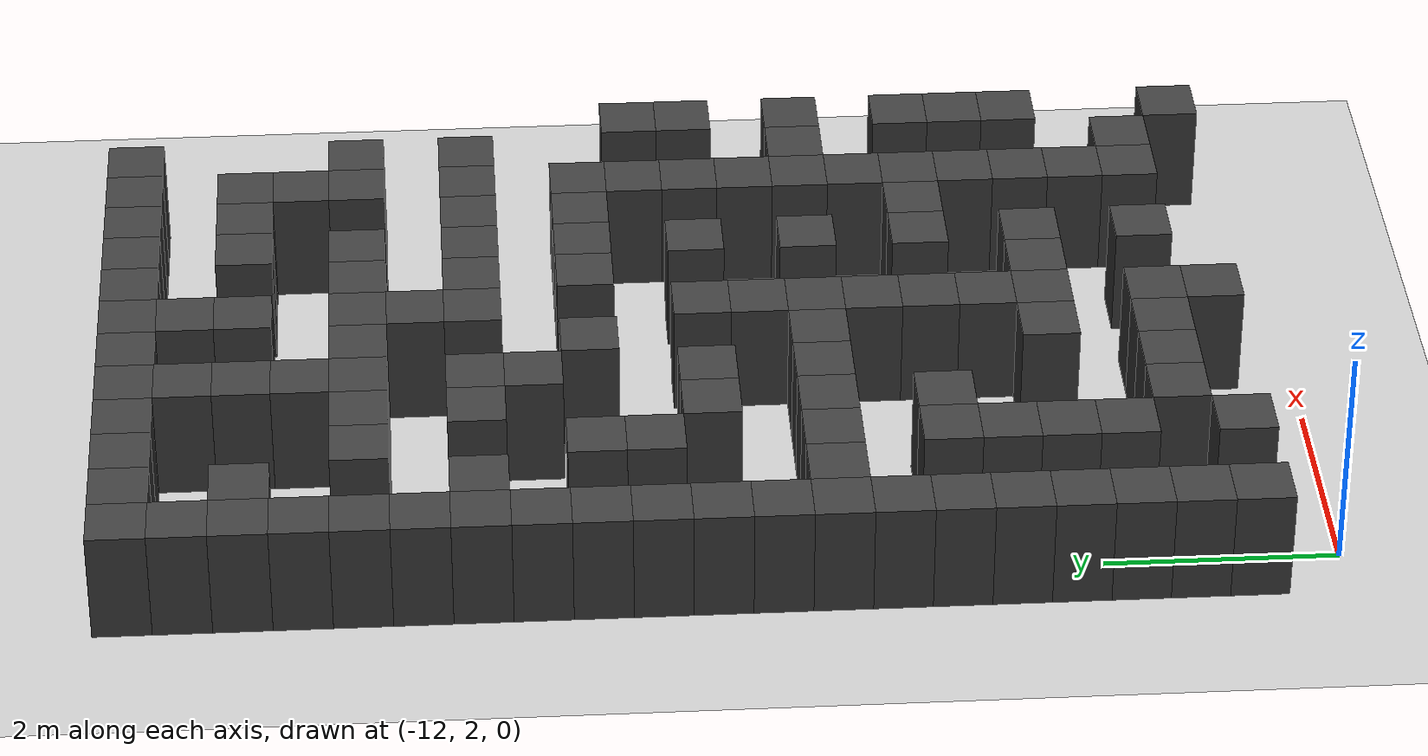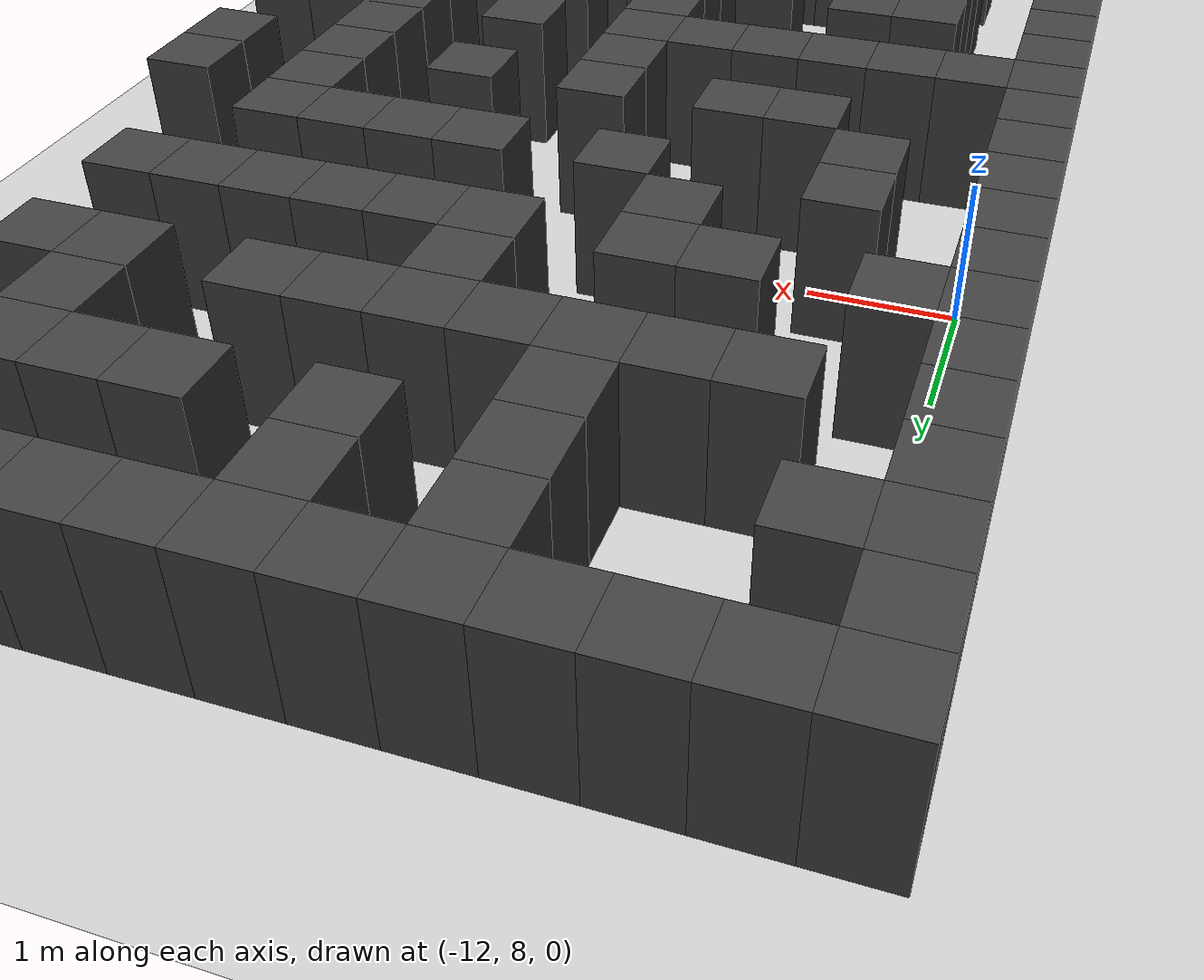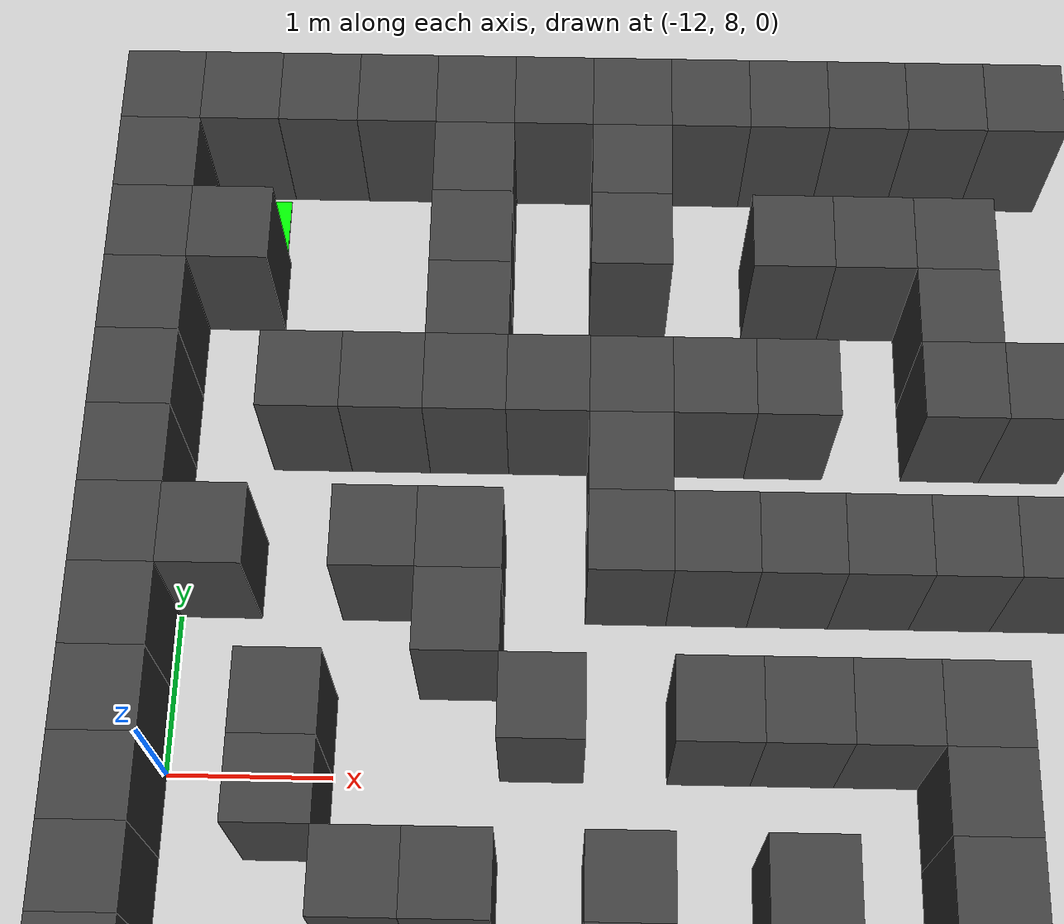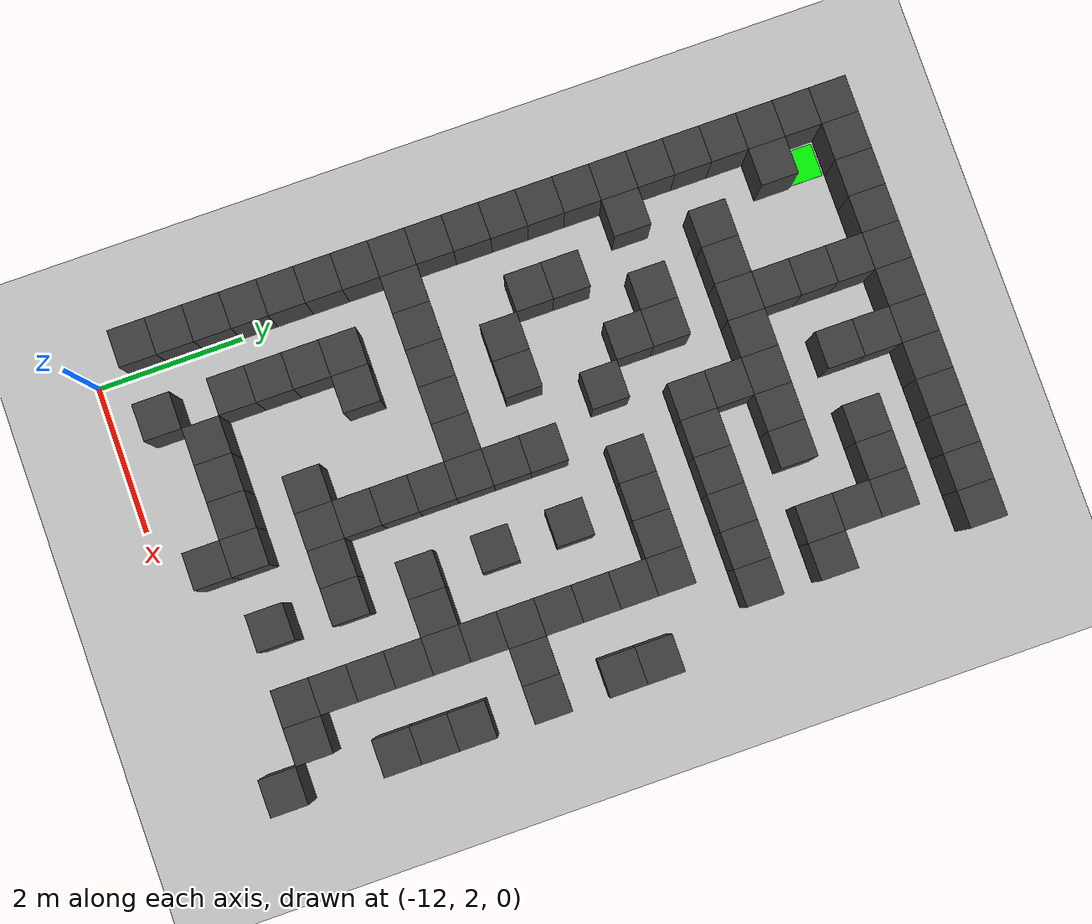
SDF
<sdf version="1.7">
 <world name="map_15497">
  <model name="ground_plane">
   <static>true</static>
   <link name="link">
    <collision name="collision">
     <geometry><plane><normal>0 0 1</normal><size>200 200</size></plane></geometry>
    </collision>
    <visual name="visual">
     <geometry><plane><normal>0 0 1</normal><size>200 200</size></plane></geometry>
     <material><ambient>0.8 0.8 0.8 1</ambient><diffuse>0.8 0.8 0.8 1</diffuse></material>
    </visual>
   </link>
  </model>
  <model name="maze_environment">
   <static>true</static>
   <link name="wall_0">
    <pose>-12.250 12.250 0.500 0 0 0</pose>
    <collision name="col"><geometry><box><size>0.5 0.5 1.0</size></box></geometry></collision>
    <visual name="vis">
     <geometry><box><size>0.5 0.5 1.0</size></box></geometry>
     <material><ambient>0.15 0.15 0.15 1</ambient><diffuse>0.25 0.25 0.25 1</diffuse></material>
    </visual>
   </link>
   <link name="wall_1">
    <pose>-11.750 12.250 0.500 0 0 0</pose>
    <collision name="col"><geometry><box><size>0.5 0.5 1.0</size></box></geometry></collision>
    <visual name="vis">
     <geometry><box><size>0.5 0.5 1.0</size></box></geometry>
     <material><ambient>0.15 0.15 0.15 1</ambient><diffuse>0.25 0.25 0.25 1</diffuse></material>
    </visual>
   </link>
   <link name="wall_2">
    <pose>-11.250 12.250 0.500 0 0 0</pose>
    <collision name="col"><geometry><box><size>0.5 0.5 1.0</size></box></geometry></collision>
    <visual name="vis">
     <geometry><box><size>0.5 0.5 1.0</size></box></geometry>
     <material><ambient>0.15 0.15 0.15 1</ambient><diffuse>0.25 0.25 0.25 1</diffuse></material>
    </visual>
   </link>
   <link name="wall_3">
    <pose>-10.750 12.250 0.500 0 0 0</pose>
    <collision name="col"><geometry><box><size>0.5 0.5 1.0</size></box></geometry></collision>
    <visual name="vis">
     <geometry><box><size>0.5 0.5 1.0</size></box></geometry>
     <material><ambient>0.15 0.15 0.15 1</ambient><diffuse>0.25 0.25 0.25 1</diffuse></material>
    </visual>
   </link>
   <link name="wall_4">
    <pose>-10.250 12.250 0.500 0 0 0</pose>
    <collision name="col"><geometry><box><size>0.5 0.5 1.0</size></box></geometry></collision>
    <visual name="vis">
     <geometry><box><size>0.5 0.5 1.0</size></box></geometry>
     <material><ambient>0.15 0.15 0.15 1</ambient><diffuse>0.25 0.25 0.25 1</diffuse></material>
    </visual>
   </link>
   <link name="wall_5">
    <pose>-9.750 12.250 0.500 0 0 0</pose>
    <collision name="col"><geometry><box><size>0.5 0.5 1.0</size></box></geometry></collision>
    <visual name="vis">
     <geometry><box><size>0.5 0.5 1.0</size></box></geometry>
     <material><ambient>0.15 0.15 0.15 1</ambient><diffuse>0.25 0.25 0.25 1</diffuse></material>
    </visual>
   </link>
   <link name="wall_6">
    <pose>-9.250 12.250 0.500 0 0 0</pose>
    <collision name="col"><geometry><box><size>0.5 0.5 1.0</size></box></geometry></collision>
    <visual name="vis">
     <geometry><box><size>0.5 0.5 1.0</size></box></geometry>
     <material><ambient>0.15 0.15 0.15 1</ambient><diffuse>0.25 0.25 0.25 1</diffuse></material>
    </visual>
   </link>
   <link name="wall_7">
    <pose>-8.750 12.250 0.500 0 0 0</pose>
    <collision name="col"><geometry><box><size>0.5 0.5 1.0</size></box></geometry></collision>
    <visual name="vis">
     <geometry><box><size>0.5 0.5 1.0</size></box></geometry>
     <material><ambient>0.15 0.15 0.15 1</ambient><diffuse>0.25 0.25 0.25 1</diffuse></material>
    </visual>
   </link>
   <link name="wall_8">
    <pose>-8.250 12.250 0.500 0 0 0</pose>
    <collision name="col"><geometry><box><size>0.5 0.5 1.0</size></box></geometry></collision>
    <visual name="vis">
     <geometry><box><size>0.5 0.5 1.0</size></box></geometry>
     <material><ambient>0.15 0.15 0.15 1</ambient><diffuse>0.25 0.25 0.25 1</diffuse></material>
    </visual>
   </link>
   <link name="wall_9">
    <pose>-7.750 12.250 0.500 0 0 0</pose>
    <collision name="col"><geometry><box><size>0.5 0.5 1.0</size></box></geometry></collision>
    <visual name="vis">
     <geometry><box><size>0.5 0.5 1.0</size></box></geometry>
     <material><ambient>0.15 0.15 0.15 1</ambient><diffuse>0.25 0.25 0.25 1</diffuse></material>
    </visual>
   </link>
   <link name="wall_10">
    <pose>-7.250 12.250 0.500 0 0 0</pose>
    <collision name="col"><geometry><box><size>0.5 0.5 1.0</size></box></geometry></collision>
    <visual name="vis">
     <geometry><box><size>0.5 0.5 1.0</size></box></geometry>
     <material><ambient>0.15 0.15 0.15 1</ambient><diffuse>0.25 0.25 0.25 1</diffuse></material>
    </visual>
   </link>
   <link name="wall_11">
    <pose>-6.750 12.250 0.500 0 0 0</pose>
    <collision name="col"><geometry><box><size>0.5 0.5 1.0</size></box></geometry></collision>
    <visual name="vis">
     <geometry><box><size>0.5 0.5 1.0</size></box></geometry>
     <material><ambient>0.15 0.15 0.15 1</ambient><diffuse>0.25 0.25 0.25 1</diffuse></material>
    </visual>
   </link>
   <link name="wall_50">
    <pose>-12.250 11.750 0.500 0 0 0</pose>
    <collision name="col"><geometry><box><size>0.5 0.5 1.0</size></box></geometry></collision>
    <visual name="vis">
     <geometry><box><size>0.5 0.5 1.0</size></box></geometry>
     <material><ambient>0.15 0.15 0.15 1</ambient><diffuse>0.25 0.25 0.25 1</diffuse></material>
    </visual>
   </link>
   <link name="wall_51">
    <pose>-10.250 11.750 0.500 0 0 0</pose>
    <collision name="col"><geometry><box><size>0.5 0.5 1.0</size></box></geometry></collision>
    <visual name="vis">
     <geometry><box><size>0.5 0.5 1.0</size></box></geometry>
     <material><ambient>0.15 0.15 0.15 1</ambient><diffuse>0.25 0.25 0.25 1</diffuse></material>
    </visual>
   </link>
   <link name="wall_52">
    <pose>-9.250 11.750 0.500 0 0 0</pose>
    <collision name="col"><geometry><box><size>0.5 0.5 1.0</size></box></geometry></collision>
    <visual name="vis">
     <geometry><box><size>0.5 0.5 1.0</size></box></geometry>
     <material><ambient>0.15 0.15 0.15 1</ambient><diffuse>0.25 0.25 0.25 1</diffuse></material>
    </visual>
   </link>
   <link name="wall_59">
    <pose>-12.250 11.250 0.500 0 0 0</pose>
    <collision name="col"><geometry><box><size>0.5 0.5 1.0</size></box></geometry></collision>
    <visual name="vis">
     <geometry><box><size>0.5 0.5 1.0</size></box></geometry>
     <material><ambient>0.15 0.15 0.15 1</ambient><diffuse>0.25 0.25 0.25 1</diffuse></material>
    </visual>
   </link>
   <link name="wall_60">
    <pose>-11.750 11.250 0.500 0 0 0</pose>
    <collision name="col"><geometry><box><size>0.5 0.5 1.0</size></box></geometry></collision>
    <visual name="vis">
     <geometry><box><size>0.5 0.5 1.0</size></box></geometry>
     <material><ambient>0.15 0.15 0.15 1</ambient><diffuse>0.25 0.25 0.25 1</diffuse></material>
    </visual>
   </link>
   <link name="wall_61">
    <pose>-10.250 11.250 0.500 0 0 0</pose>
    <collision name="col"><geometry><box><size>0.5 0.5 1.0</size></box></geometry></collision>
    <visual name="vis">
     <geometry><box><size>0.5 0.5 1.0</size></box></geometry>
     <material><ambient>0.15 0.15 0.15 1</ambient><diffuse>0.25 0.25 0.25 1</diffuse></material>
    </visual>
   </link>
   <link name="wall_62">
    <pose>-9.250 11.250 0.500 0 0 0</pose>
    <collision name="col"><geometry><box><size>0.5 0.5 1.0</size></box></geometry></collision>
    <visual name="vis">
     <geometry><box><size>0.5 0.5 1.0</size></box></geometry>
     <material><ambient>0.15 0.15 0.15 1</ambient><diffuse>0.25 0.25 0.25 1</diffuse></material>
    </visual>
   </link>
   <link name="wall_63">
    <pose>-8.250 11.250 0.500 0 0 0</pose>
    <collision name="col"><geometry><box><size>0.5 0.5 1.0</size></box></geometry></collision>
    <visual name="vis">
     <geometry><box><size>0.5 0.5 1.0</size></box></geometry>
     <material><ambient>0.15 0.15 0.15 1</ambient><diffuse>0.25 0.25 0.25 1</diffuse></material>
    </visual>
   </link>
   <link name="wall_64">
    <pose>-7.750 11.250 0.500 0 0 0</pose>
    <collision name="col"><geometry><box><size>0.5 0.5 1.0</size></box></geometry></collision>
    <visual name="vis">
     <geometry><box><size>0.5 0.5 1.0</size></box></geometry>
     <material><ambient>0.15 0.15 0.15 1</ambient><diffuse>0.25 0.25 0.25 1</diffuse></material>
    </visual>
   </link>
   <link name="wall_65">
    <pose>-7.250 11.250 0.500 0 0 0</pose>
    <collision name="col"><geometry><box><size>0.5 0.5 1.0</size></box></geometry></collision>
    <visual name="vis">
     <geometry><box><size>0.5 0.5 1.0</size></box></geometry>
     <material><ambient>0.15 0.15 0.15 1</ambient><diffuse>0.25 0.25 0.25 1</diffuse></material>
    </visual>
   </link>
   <link name="wall_91">
    <pose>-12.250 10.750 0.500 0 0 0</pose>
    <collision name="col"><geometry><box><size>0.5 0.5 1.0</size></box></geometry></collision>
    <visual name="vis">
     <geometry><box><size>0.5 0.5 1.0</size></box></geometry>
     <material><ambient>0.15 0.15 0.15 1</ambient><diffuse>0.25 0.25 0.25 1</diffuse></material>
    </visual>
   </link>
   <link name="wall_92">
    <pose>-10.250 10.750 0.500 0 0 0</pose>
    <collision name="col"><geometry><box><size>0.5 0.5 1.0</size></box></geometry></collision>
    <visual name="vis">
     <geometry><box><size>0.5 0.5 1.0</size></box></geometry>
     <material><ambient>0.15 0.15 0.15 1</ambient><diffuse>0.25 0.25 0.25 1</diffuse></material>
    </visual>
   </link>
   <link name="wall_93">
    <pose>-7.250 10.750 0.500 0 0 0</pose>
    <collision name="col"><geometry><box><size>0.5 0.5 1.0</size></box></geometry></collision>
    <visual name="vis">
     <geometry><box><size>0.5 0.5 1.0</size></box></geometry>
     <material><ambient>0.15 0.15 0.15 1</ambient><diffuse>0.25 0.25 0.25 1</diffuse></material>
    </visual>
   </link>
   <link name="wall_105">
    <pose>-12.250 10.250 0.500 0 0 0</pose>
    <collision name="col"><geometry><box><size>0.5 0.5 1.0</size></box></geometry></collision>
    <visual name="vis">
     <geometry><box><size>0.5 0.5 1.0</size></box></geometry>
     <material><ambient>0.15 0.15 0.15 1</ambient><diffuse>0.25 0.25 0.25 1</diffuse></material>
    </visual>
   </link>
   <link name="wall_106">
    <pose>-11.250 10.250 0.500 0 0 0</pose>
    <collision name="col"><geometry><box><size>0.5 0.5 1.0</size></box></geometry></collision>
    <visual name="vis">
     <geometry><box><size>0.5 0.5 1.0</size></box></geometry>
     <material><ambient>0.15 0.15 0.15 1</ambient><diffuse>0.25 0.25 0.25 1</diffuse></material>
    </visual>
   </link>
   <link name="wall_107">
    <pose>-10.750 10.250 0.500 0 0 0</pose>
    <collision name="col"><geometry><box><size>0.5 0.5 1.0</size></box></geometry></collision>
    <visual name="vis">
     <geometry><box><size>0.5 0.5 1.0</size></box></geometry>
     <material><ambient>0.15 0.15 0.15 1</ambient><diffuse>0.25 0.25 0.25 1</diffuse></material>
    </visual>
   </link>
   <link name="wall_108">
    <pose>-10.250 10.250 0.500 0 0 0</pose>
    <collision name="col"><geometry><box><size>0.5 0.5 1.0</size></box></geometry></collision>
    <visual name="vis">
     <geometry><box><size>0.5 0.5 1.0</size></box></geometry>
     <material><ambient>0.15 0.15 0.15 1</ambient><diffuse>0.25 0.25 0.25 1</diffuse></material>
    </visual>
   </link>
   <link name="wall_109">
    <pose>-9.750 10.250 0.500 0 0 0</pose>
    <collision name="col"><geometry><box><size>0.5 0.5 1.0</size></box></geometry></collision>
    <visual name="vis">
     <geometry><box><size>0.5 0.5 1.0</size></box></geometry>
     <material><ambient>0.15 0.15 0.15 1</ambient><diffuse>0.25 0.25 0.25 1</diffuse></material>
    </visual>
   </link>
   <link name="wall_110">
    <pose>-9.250 10.250 0.500 0 0 0</pose>
    <collision name="col"><geometry><box><size>0.5 0.5 1.0</size></box></geometry></collision>
    <visual name="vis">
     <geometry><box><size>0.5 0.5 1.0</size></box></geometry>
     <material><ambient>0.15 0.15 0.15 1</ambient><diffuse>0.25 0.25 0.25 1</diffuse></material>
    </visual>
   </link>
   <link name="wall_111">
    <pose>-8.750 10.250 0.500 0 0 0</pose>
    <collision name="col"><geometry><box><size>0.5 0.5 1.0</size></box></geometry></collision>
    <visual name="vis">
     <geometry><box><size>0.5 0.5 1.0</size></box></geometry>
     <material><ambient>0.15 0.15 0.15 1</ambient><diffuse>0.25 0.25 0.25 1</diffuse></material>
    </visual>
   </link>
   <link name="wall_112">
    <pose>-8.250 10.250 0.500 0 0 0</pose>
    <collision name="col"><geometry><box><size>0.5 0.5 1.0</size></box></geometry></collision>
    <visual name="vis">
     <geometry><box><size>0.5 0.5 1.0</size></box></geometry>
     <material><ambient>0.15 0.15 0.15 1</ambient><diffuse>0.25 0.25 0.25 1</diffuse></material>
    </visual>
   </link>
   <link name="wall_113">
    <pose>-7.250 10.250 0.500 0 0 0</pose>
    <collision name="col"><geometry><box><size>0.5 0.5 1.0</size></box></geometry></collision>
    <visual name="vis">
     <geometry><box><size>0.5 0.5 1.0</size></box></geometry>
     <material><ambient>0.15 0.15 0.15 1</ambient><diffuse>0.25 0.25 0.25 1</diffuse></material>
    </visual>
   </link>
   <link name="wall_114">
    <pose>-6.750 10.250 0.500 0 0 0</pose>
    <collision name="col"><geometry><box><size>0.5 0.5 1.0</size></box></geometry></collision>
    <visual name="vis">
     <geometry><box><size>0.5 0.5 1.0</size></box></geometry>
     <material><ambient>0.15 0.15 0.15 1</ambient><diffuse>0.25 0.25 0.25 1</diffuse></material>
    </visual>
   </link>
   <link name="wall_138">
    <pose>-12.250 9.750 0.500 0 0 0</pose>
    <collision name="col"><geometry><box><size>0.5 0.5 1.0</size></box></geometry></collision>
    <visual name="vis">
     <geometry><box><size>0.5 0.5 1.0</size></box></geometry>
     <material><ambient>0.15 0.15 0.15 1</ambient><diffuse>0.25 0.25 0.25 1</diffuse></material>
    </visual>
   </link>
   <link name="wall_139">
    <pose>-9.250 9.750 0.500 0 0 0</pose>
    <collision name="col"><geometry><box><size>0.5 0.5 1.0</size></box></geometry></collision>
    <visual name="vis">
     <geometry><box><size>0.5 0.5 1.0</size></box></geometry>
     <material><ambient>0.15 0.15 0.15 1</ambient><diffuse>0.25 0.25 0.25 1</diffuse></material>
    </visual>
   </link>
   <link name="wall_150">
    <pose>-12.250 9.250 0.500 0 0 0</pose>
    <collision name="col"><geometry><box><size>0.5 0.5 1.0</size></box></geometry></collision>
    <visual name="vis">
     <geometry><box><size>0.5 0.5 1.0</size></box></geometry>
     <material><ambient>0.15 0.15 0.15 1</ambient><diffuse>0.25 0.25 0.25 1</diffuse></material>
    </visual>
   </link>
   <link name="wall_151">
    <pose>-11.750 9.250 0.500 0 0 0</pose>
    <collision name="col"><geometry><box><size>0.5 0.5 1.0</size></box></geometry></collision>
    <visual name="vis">
     <geometry><box><size>0.5 0.5 1.0</size></box></geometry>
     <material><ambient>0.15 0.15 0.15 1</ambient><diffuse>0.25 0.25 0.25 1</diffuse></material>
    </visual>
   </link>
   <link name="wall_152">
    <pose>-10.750 9.250 0.500 0 0 0</pose>
    <collision name="col"><geometry><box><size>0.5 0.5 1.0</size></box></geometry></collision>
    <visual name="vis">
     <geometry><box><size>0.5 0.5 1.0</size></box></geometry>
     <material><ambient>0.15 0.15 0.15 1</ambient><diffuse>0.25 0.25 0.25 1</diffuse></material>
    </visual>
   </link>
   <link name="wall_153">
    <pose>-10.250 9.250 0.500 0 0 0</pose>
    <collision name="col"><geometry><box><size>0.5 0.5 1.0</size></box></geometry></collision>
    <visual name="vis">
     <geometry><box><size>0.5 0.5 1.0</size></box></geometry>
     <material><ambient>0.15 0.15 0.15 1</ambient><diffuse>0.25 0.25 0.25 1</diffuse></material>
    </visual>
   </link>
   <link name="wall_154">
    <pose>-9.250 9.250 0.500 0 0 0</pose>
    <collision name="col"><geometry><box><size>0.5 0.5 1.0</size></box></geometry></collision>
    <visual name="vis">
     <geometry><box><size>0.5 0.5 1.0</size></box></geometry>
     <material><ambient>0.15 0.15 0.15 1</ambient><diffuse>0.25 0.25 0.25 1</diffuse></material>
    </visual>
   </link>
   <link name="wall_155">
    <pose>-8.750 9.250 0.500 0 0 0</pose>
    <collision name="col"><geometry><box><size>0.5 0.5 1.0</size></box></geometry></collision>
    <visual name="vis">
     <geometry><box><size>0.5 0.5 1.0</size></box></geometry>
     <material><ambient>0.15 0.15 0.15 1</ambient><diffuse>0.25 0.25 0.25 1</diffuse></material>
    </visual>
   </link>
   <link name="wall_156">
    <pose>-8.250 9.250 0.500 0 0 0</pose>
    <collision name="col"><geometry><box><size>0.5 0.5 1.0</size></box></geometry></collision>
    <visual name="vis">
     <geometry><box><size>0.5 0.5 1.0</size></box></geometry>
     <material><ambient>0.15 0.15 0.15 1</ambient><diffuse>0.25 0.25 0.25 1</diffuse></material>
    </visual>
   </link>
   <link name="wall_157">
    <pose>-7.750 9.250 0.500 0 0 0</pose>
    <collision name="col"><geometry><box><size>0.5 0.5 1.0</size></box></geometry></collision>
    <visual name="vis">
     <geometry><box><size>0.5 0.5 1.0</size></box></geometry>
     <material><ambient>0.15 0.15 0.15 1</ambient><diffuse>0.25 0.25 0.25 1</diffuse></material>
    </visual>
   </link>
   <link name="wall_158">
    <pose>-7.250 9.250 0.500 0 0 0</pose>
    <collision name="col"><geometry><box><size>0.5 0.5 1.0</size></box></geometry></collision>
    <visual name="vis">
     <geometry><box><size>0.5 0.5 1.0</size></box></geometry>
     <material><ambient>0.15 0.15 0.15 1</ambient><diffuse>0.25 0.25 0.25 1</diffuse></material>
    </visual>
   </link>
   <link name="wall_159">
    <pose>-6.750 9.250 0.500 0 0 0</pose>
    <collision name="col"><geometry><box><size>0.5 0.5 1.0</size></box></geometry></collision>
    <visual name="vis">
     <geometry><box><size>0.5 0.5 1.0</size></box></geometry>
     <material><ambient>0.15 0.15 0.15 1</ambient><diffuse>0.25 0.25 0.25 1</diffuse></material>
    </visual>
   </link>
   <link name="wall_183">
    <pose>-12.250 8.750 0.500 0 0 0</pose>
    <collision name="col"><geometry><box><size>0.5 0.5 1.0</size></box></geometry></collision>
    <visual name="vis">
     <geometry><box><size>0.5 0.5 1.0</size></box></geometry>
     <material><ambient>0.15 0.15 0.15 1</ambient><diffuse>0.25 0.25 0.25 1</diffuse></material>
    </visual>
   </link>
   <link name="wall_184">
    <pose>-10.250 8.750 0.500 0 0 0</pose>
    <collision name="col"><geometry><box><size>0.5 0.5 1.0</size></box></geometry></collision>
    <visual name="vis">
     <geometry><box><size>0.5 0.5 1.0</size></box></geometry>
     <material><ambient>0.15 0.15 0.15 1</ambient><diffuse>0.25 0.25 0.25 1</diffuse></material>
    </visual>
   </link>
   <link name="wall_195">
    <pose>-12.250 8.250 0.500 0 0 0</pose>
    <collision name="col"><geometry><box><size>0.5 0.5 1.0</size></box></geometry></collision>
    <visual name="vis">
     <geometry><box><size>0.5 0.5 1.0</size></box></geometry>
     <material><ambient>0.15 0.15 0.15 1</ambient><diffuse>0.25 0.25 0.25 1</diffuse></material>
    </visual>
   </link>
   <link name="wall_196">
    <pose>-11.250 8.250 0.500 0 0 0</pose>
    <collision name="col"><geometry><box><size>0.5 0.5 1.0</size></box></geometry></collision>
    <visual name="vis">
     <geometry><box><size>0.5 0.5 1.0</size></box></geometry>
     <material><ambient>0.15 0.15 0.15 1</ambient><diffuse>0.25 0.25 0.25 1</diffuse></material>
    </visual>
   </link>
   <link name="wall_197">
    <pose>-9.750 8.250 0.500 0 0 0</pose>
    <collision name="col"><geometry><box><size>0.5 0.5 1.0</size></box></geometry></collision>
    <visual name="vis">
     <geometry><box><size>0.5 0.5 1.0</size></box></geometry>
     <material><ambient>0.15 0.15 0.15 1</ambient><diffuse>0.25 0.25 0.25 1</diffuse></material>
    </visual>
   </link>
   <link name="wall_198">
    <pose>-8.750 8.250 0.500 0 0 0</pose>
    <collision name="col"><geometry><box><size>0.5 0.5 1.0</size></box></geometry></collision>
    <visual name="vis">
     <geometry><box><size>0.5 0.5 1.0</size></box></geometry>
     <material><ambient>0.15 0.15 0.15 1</ambient><diffuse>0.25 0.25 0.25 1</diffuse></material>
    </visual>
   </link>
   <link name="wall_199">
    <pose>-8.250 8.250 0.500 0 0 0</pose>
    <collision name="col"><geometry><box><size>0.5 0.5 1.0</size></box></geometry></collision>
    <visual name="vis">
     <geometry><box><size>0.5 0.5 1.0</size></box></geometry>
     <material><ambient>0.15 0.15 0.15 1</ambient><diffuse>0.25 0.25 0.25 1</diffuse></material>
    </visual>
   </link>
   <link name="wall_200">
    <pose>-7.750 8.250 0.500 0 0 0</pose>
    <collision name="col"><geometry><box><size>0.5 0.5 1.0</size></box></geometry></collision>
    <visual name="vis">
     <geometry><box><size>0.5 0.5 1.0</size></box></geometry>
     <material><ambient>0.15 0.15 0.15 1</ambient><diffuse>0.25 0.25 0.25 1</diffuse></material>
    </visual>
   </link>
   <link name="wall_201">
    <pose>-7.250 8.250 0.500 0 0 0</pose>
    <collision name="col"><geometry><box><size>0.5 0.5 1.0</size></box></geometry></collision>
    <visual name="vis">
     <geometry><box><size>0.5 0.5 1.0</size></box></geometry>
     <material><ambient>0.15 0.15 0.15 1</ambient><diffuse>0.25 0.25 0.25 1</diffuse></material>
    </visual>
   </link>
   <link name="wall_228">
    <pose>-12.250 7.750 0.500 0 0 0</pose>
    <collision name="col"><geometry><box><size>0.5 0.5 1.0</size></box></geometry></collision>
    <visual name="vis">
     <geometry><box><size>0.5 0.5 1.0</size></box></geometry>
     <material><ambient>0.15 0.15 0.15 1</ambient><diffuse>0.25 0.25 0.25 1</diffuse></material>
    </visual>
   </link>
   <link name="wall_229">
    <pose>-11.250 7.750 0.500 0 0 0</pose>
    <collision name="col"><geometry><box><size>0.5 0.5 1.0</size></box></geometry></collision>
    <visual name="vis">
     <geometry><box><size>0.5 0.5 1.0</size></box></geometry>
     <material><ambient>0.15 0.15 0.15 1</ambient><diffuse>0.25 0.25 0.25 1</diffuse></material>
    </visual>
   </link>
   <link name="wall_230">
    <pose>-7.250 7.750 0.500 0 0 0</pose>
    <collision name="col"><geometry><box><size>0.5 0.5 1.0</size></box></geometry></collision>
    <visual name="vis">
     <geometry><box><size>0.5 0.5 1.0</size></box></geometry>
     <material><ambient>0.15 0.15 0.15 1</ambient><diffuse>0.25 0.25 0.25 1</diffuse></material>
    </visual>
   </link>
   <link name="wall_231">
    <pose>-6.250 7.750 0.500 0 0 0</pose>
    <collision name="col"><geometry><box><size>0.5 0.5 1.0</size></box></geometry></collision>
    <visual name="vis">
     <geometry><box><size>0.5 0.5 1.0</size></box></geometry>
     <material><ambient>0.15 0.15 0.15 1</ambient><diffuse>0.25 0.25 0.25 1</diffuse></material>
    </visual>
   </link>
   <link name="wall_239">
    <pose>-12.250 7.250 0.500 0 0 0</pose>
    <collision name="col"><geometry><box><size>0.5 0.5 1.0</size></box></geometry></collision>
    <visual name="vis">
     <geometry><box><size>0.5 0.5 1.0</size></box></geometry>
     <material><ambient>0.15 0.15 0.15 1</ambient><diffuse>0.25 0.25 0.25 1</diffuse></material>
    </visual>
   </link>
   <link name="wall_240">
    <pose>-10.750 7.250 0.500 0 0 0</pose>
    <collision name="col"><geometry><box><size>0.5 0.5 1.0</size></box></geometry></collision>
    <visual name="vis">
     <geometry><box><size>0.5 0.5 1.0</size></box></geometry>
     <material><ambient>0.15 0.15 0.15 1</ambient><diffuse>0.25 0.25 0.25 1</diffuse></material>
    </visual>
   </link>
   <link name="wall_241">
    <pose>-10.250 7.250 0.500 0 0 0</pose>
    <collision name="col"><geometry><box><size>0.5 0.5 1.0</size></box></geometry></collision>
    <visual name="vis">
     <geometry><box><size>0.5 0.5 1.0</size></box></geometry>
     <material><ambient>0.15 0.15 0.15 1</ambient><diffuse>0.25 0.25 0.25 1</diffuse></material>
    </visual>
   </link>
   <link name="wall_242">
    <pose>-9.250 7.250 0.500 0 0 0</pose>
    <collision name="col"><geometry><box><size>0.5 0.5 1.0</size></box></geometry></collision>
    <visual name="vis">
     <geometry><box><size>0.5 0.5 1.0</size></box></geometry>
     <material><ambient>0.15 0.15 0.15 1</ambient><diffuse>0.25 0.25 0.25 1</diffuse></material>
    </visual>
   </link>
   <link name="wall_243">
    <pose>-8.250 7.250 0.500 0 0 0</pose>
    <collision name="col"><geometry><box><size>0.5 0.5 1.0</size></box></geometry></collision>
    <visual name="vis">
     <geometry><box><size>0.5 0.5 1.0</size></box></geometry>
     <material><ambient>0.15 0.15 0.15 1</ambient><diffuse>0.25 0.25 0.25 1</diffuse></material>
    </visual>
   </link>
   <link name="wall_244">
    <pose>-7.250 7.250 0.500 0 0 0</pose>
    <collision name="col"><geometry><box><size>0.5 0.5 1.0</size></box></geometry></collision>
    <visual name="vis">
     <geometry><box><size>0.5 0.5 1.0</size></box></geometry>
     <material><ambient>0.15 0.15 0.15 1</ambient><diffuse>0.25 0.25 0.25 1</diffuse></material>
    </visual>
   </link>
   <link name="wall_245">
    <pose>-6.250 7.250 0.500 0 0 0</pose>
    <collision name="col"><geometry><box><size>0.5 0.5 1.0</size></box></geometry></collision>
    <visual name="vis">
     <geometry><box><size>0.5 0.5 1.0</size></box></geometry>
     <material><ambient>0.15 0.15 0.15 1</ambient><diffuse>0.25 0.25 0.25 1</diffuse></material>
    </visual>
   </link>
   <link name="wall_273">
    <pose>-12.250 6.750 0.500 0 0 0</pose>
    <collision name="col"><geometry><box><size>0.5 0.5 1.0</size></box></geometry></collision>
    <visual name="vis">
     <geometry><box><size>0.5 0.5 1.0</size></box></geometry>
     <material><ambient>0.15 0.15 0.15 1</ambient><diffuse>0.25 0.25 0.25 1</diffuse></material>
    </visual>
   </link>
   <link name="wall_274">
    <pose>-9.250 6.750 0.500 0 0 0</pose>
    <collision name="col"><geometry><box><size>0.5 0.5 1.0</size></box></geometry></collision>
    <visual name="vis">
     <geometry><box><size>0.5 0.5 1.0</size></box></geometry>
     <material><ambient>0.15 0.15 0.15 1</ambient><diffuse>0.25 0.25 0.25 1</diffuse></material>
    </visual>
   </link>
   <link name="wall_275">
    <pose>-7.250 6.750 0.500 0 0 0</pose>
    <collision name="col"><geometry><box><size>0.5 0.5 1.0</size></box></geometry></collision>
    <visual name="vis">
     <geometry><box><size>0.5 0.5 1.0</size></box></geometry>
     <material><ambient>0.15 0.15 0.15 1</ambient><diffuse>0.25 0.25 0.25 1</diffuse></material>
    </visual>
   </link>
   <link name="wall_283">
    <pose>-12.250 6.250 0.500 0 0 0</pose>
    <collision name="col"><geometry><box><size>0.5 0.5 1.0</size></box></geometry></collision>
    <visual name="vis">
     <geometry><box><size>0.5 0.5 1.0</size></box></geometry>
     <material><ambient>0.15 0.15 0.15 1</ambient><diffuse>0.25 0.25 0.25 1</diffuse></material>
    </visual>
   </link>
   <link name="wall_284">
    <pose>-11.750 6.250 0.500 0 0 0</pose>
    <collision name="col"><geometry><box><size>0.5 0.5 1.0</size></box></geometry></collision>
    <visual name="vis">
     <geometry><box><size>0.5 0.5 1.0</size></box></geometry>
     <material><ambient>0.15 0.15 0.15 1</ambient><diffuse>0.25 0.25 0.25 1</diffuse></material>
    </visual>
   </link>
   <link name="wall_285">
    <pose>-11.250 6.250 0.500 0 0 0</pose>
    <collision name="col"><geometry><box><size>0.5 0.5 1.0</size></box></geometry></collision>
    <visual name="vis">
     <geometry><box><size>0.5 0.5 1.0</size></box></geometry>
     <material><ambient>0.15 0.15 0.15 1</ambient><diffuse>0.25 0.25 0.25 1</diffuse></material>
    </visual>
   </link>
   <link name="wall_286">
    <pose>-10.750 6.250 0.500 0 0 0</pose>
    <collision name="col"><geometry><box><size>0.5 0.5 1.0</size></box></geometry></collision>
    <visual name="vis">
     <geometry><box><size>0.5 0.5 1.0</size></box></geometry>
     <material><ambient>0.15 0.15 0.15 1</ambient><diffuse>0.25 0.25 0.25 1</diffuse></material>
    </visual>
   </link>
   <link name="wall_287">
    <pose>-10.250 6.250 0.500 0 0 0</pose>
    <collision name="col"><geometry><box><size>0.5 0.5 1.0</size></box></geometry></collision>
    <visual name="vis">
     <geometry><box><size>0.5 0.5 1.0</size></box></geometry>
     <material><ambient>0.15 0.15 0.15 1</ambient><diffuse>0.25 0.25 0.25 1</diffuse></material>
    </visual>
   </link>
   <link name="wall_288">
    <pose>-9.750 6.250 0.500 0 0 0</pose>
    <collision name="col"><geometry><box><size>0.5 0.5 1.0</size></box></geometry></collision>
    <visual name="vis">
     <geometry><box><size>0.5 0.5 1.0</size></box></geometry>
     <material><ambient>0.15 0.15 0.15 1</ambient><diffuse>0.25 0.25 0.25 1</diffuse></material>
    </visual>
   </link>
   <link name="wall_289">
    <pose>-9.250 6.250 0.500 0 0 0</pose>
    <collision name="col"><geometry><box><size>0.5 0.5 1.0</size></box></geometry></collision>
    <visual name="vis">
     <geometry><box><size>0.5 0.5 1.0</size></box></geometry>
     <material><ambient>0.15 0.15 0.15 1</ambient><diffuse>0.25 0.25 0.25 1</diffuse></material>
    </visual>
   </link>
   <link name="wall_290">
    <pose>-8.250 6.250 0.500 0 0 0</pose>
    <collision name="col"><geometry><box><size>0.5 0.5 1.0</size></box></geometry></collision>
    <visual name="vis">
     <geometry><box><size>0.5 0.5 1.0</size></box></geometry>
     <material><ambient>0.15 0.15 0.15 1</ambient><diffuse>0.25 0.25 0.25 1</diffuse></material>
    </visual>
   </link>
   <link name="wall_291">
    <pose>-7.250 6.250 0.500 0 0 0</pose>
    <collision name="col"><geometry><box><size>0.5 0.5 1.0</size></box></geometry></collision>
    <visual name="vis">
     <geometry><box><size>0.5 0.5 1.0</size></box></geometry>
     <material><ambient>0.15 0.15 0.15 1</ambient><diffuse>0.25 0.25 0.25 1</diffuse></material>
    </visual>
   </link>
   <link name="wall_292">
    <pose>-6.750 6.250 0.500 0 0 0</pose>
    <collision name="col"><geometry><box><size>0.5 0.5 1.0</size></box></geometry></collision>
    <visual name="vis">
     <geometry><box><size>0.5 0.5 1.0</size></box></geometry>
     <material><ambient>0.15 0.15 0.15 1</ambient><diffuse>0.25 0.25 0.25 1</diffuse></material>
    </visual>
   </link>
   <link name="wall_293">
    <pose>-6.250 6.250 0.500 0 0 0</pose>
    <collision name="col"><geometry><box><size>0.5 0.5 1.0</size></box></geometry></collision>
    <visual name="vis">
     <geometry><box><size>0.5 0.5 1.0</size></box></geometry>
     <material><ambient>0.15 0.15 0.15 1</ambient><diffuse>0.25 0.25 0.25 1</diffuse></material>
    </visual>
   </link>
   <link name="wall_321">
    <pose>-12.250 5.750 0.500 0 0 0</pose>
    <collision name="col"><geometry><box><size>0.5 0.5 1.0</size></box></geometry></collision>
    <visual name="vis">
     <geometry><box><size>0.5 0.5 1.0</size></box></geometry>
     <material><ambient>0.15 0.15 0.15 1</ambient><diffuse>0.25 0.25 0.25 1</diffuse></material>
    </visual>
   </link>
   <link name="wall_322">
    <pose>-9.250 5.750 0.500 0 0 0</pose>
    <collision name="col"><geometry><box><size>0.5 0.5 1.0</size></box></geometry></collision>
    <visual name="vis">
     <geometry><box><size>0.5 0.5 1.0</size></box></geometry>
     <material><ambient>0.15 0.15 0.15 1</ambient><diffuse>0.25 0.25 0.25 1</diffuse></material>
    </visual>
   </link>
   <link name="wall_323">
    <pose>-7.250 5.750 0.500 0 0 0</pose>
    <collision name="col"><geometry><box><size>0.5 0.5 1.0</size></box></geometry></collision>
    <visual name="vis">
     <geometry><box><size>0.5 0.5 1.0</size></box></geometry>
     <material><ambient>0.15 0.15 0.15 1</ambient><diffuse>0.25 0.25 0.25 1</diffuse></material>
    </visual>
   </link>
   <link name="wall_333">
    <pose>-12.250 5.250 0.500 0 0 0</pose>
    <collision name="col"><geometry><box><size>0.5 0.5 1.0</size></box></geometry></collision>
    <visual name="vis">
     <geometry><box><size>0.5 0.5 1.0</size></box></geometry>
     <material><ambient>0.15 0.15 0.15 1</ambient><diffuse>0.25 0.25 0.25 1</diffuse></material>
    </visual>
   </link>
   <link name="wall_334">
    <pose>-11.250 5.250 0.500 0 0 0</pose>
    <collision name="col"><geometry><box><size>0.5 0.5 1.0</size></box></geometry></collision>
    <visual name="vis">
     <geometry><box><size>0.5 0.5 1.0</size></box></geometry>
     <material><ambient>0.15 0.15 0.15 1</ambient><diffuse>0.25 0.25 0.25 1</diffuse></material>
    </visual>
   </link>
   <link name="wall_335">
    <pose>-10.750 5.250 0.500 0 0 0</pose>
    <collision name="col"><geometry><box><size>0.5 0.5 1.0</size></box></geometry></collision>
    <visual name="vis">
     <geometry><box><size>0.5 0.5 1.0</size></box></geometry>
     <material><ambient>0.15 0.15 0.15 1</ambient><diffuse>0.25 0.25 0.25 1</diffuse></material>
    </visual>
   </link>
   <link name="wall_336">
    <pose>-9.250 5.250 0.500 0 0 0</pose>
    <collision name="col"><geometry><box><size>0.5 0.5 1.0</size></box></geometry></collision>
    <visual name="vis">
     <geometry><box><size>0.5 0.5 1.0</size></box></geometry>
     <material><ambient>0.15 0.15 0.15 1</ambient><diffuse>0.25 0.25 0.25 1</diffuse></material>
    </visual>
   </link>
   <link name="wall_337">
    <pose>-8.250 5.250 0.500 0 0 0</pose>
    <collision name="col"><geometry><box><size>0.5 0.5 1.0</size></box></geometry></collision>
    <visual name="vis">
     <geometry><box><size>0.5 0.5 1.0</size></box></geometry>
     <material><ambient>0.15 0.15 0.15 1</ambient><diffuse>0.25 0.25 0.25 1</diffuse></material>
    </visual>
   </link>
   <link name="wall_338">
    <pose>-7.750 5.250 0.500 0 0 0</pose>
    <collision name="col"><geometry><box><size>0.5 0.5 1.0</size></box></geometry></collision>
    <visual name="vis">
     <geometry><box><size>0.5 0.5 1.0</size></box></geometry>
     <material><ambient>0.15 0.15 0.15 1</ambient><diffuse>0.25 0.25 0.25 1</diffuse></material>
    </visual>
   </link>
   <link name="wall_339">
    <pose>-7.250 5.250 0.500 0 0 0</pose>
    <collision name="col"><geometry><box><size>0.5 0.5 1.0</size></box></geometry></collision>
    <visual name="vis">
     <geometry><box><size>0.5 0.5 1.0</size></box></geometry>
     <material><ambient>0.15 0.15 0.15 1</ambient><diffuse>0.25 0.25 0.25 1</diffuse></material>
    </visual>
   </link>
   <link name="wall_340">
    <pose>-6.250 5.250 0.500 0 0 0</pose>
    <collision name="col"><geometry><box><size>0.5 0.5 1.0</size></box></geometry></collision>
    <visual name="vis">
     <geometry><box><size>0.5 0.5 1.0</size></box></geometry>
     <material><ambient>0.15 0.15 0.15 1</ambient><diffuse>0.25 0.25 0.25 1</diffuse></material>
    </visual>
   </link>
   <link name="wall_367">
    <pose>-12.250 4.750 0.500 0 0 0</pose>
    <collision name="col"><geometry><box><size>0.5 0.5 1.0</size></box></geometry></collision>
    <visual name="vis">
     <geometry><box><size>0.5 0.5 1.0</size></box></geometry>
     <material><ambient>0.15 0.15 0.15 1</ambient><diffuse>0.25 0.25 0.25 1</diffuse></material>
    </visual>
   </link>
   <link name="wall_368">
    <pose>-11.250 4.750 0.500 0 0 0</pose>
    <collision name="col"><geometry><box><size>0.5 0.5 1.0</size></box></geometry></collision>
    <visual name="vis">
     <geometry><box><size>0.5 0.5 1.0</size></box></geometry>
     <material><ambient>0.15 0.15 0.15 1</ambient><diffuse>0.25 0.25 0.25 1</diffuse></material>
    </visual>
   </link>
   <link name="wall_369">
    <pose>-9.250 4.750 0.500 0 0 0</pose>
    <collision name="col"><geometry><box><size>0.5 0.5 1.0</size></box></geometry></collision>
    <visual name="vis">
     <geometry><box><size>0.5 0.5 1.0</size></box></geometry>
     <material><ambient>0.15 0.15 0.15 1</ambient><diffuse>0.25 0.25 0.25 1</diffuse></material>
    </visual>
   </link>
   <link name="wall_370">
    <pose>-7.250 4.750 0.500 0 0 0</pose>
    <collision name="col"><geometry><box><size>0.5 0.5 1.0</size></box></geometry></collision>
    <visual name="vis">
     <geometry><box><size>0.5 0.5 1.0</size></box></geometry>
     <material><ambient>0.15 0.15 0.15 1</ambient><diffuse>0.25 0.25 0.25 1</diffuse></material>
    </visual>
   </link>
   <link name="wall_371">
    <pose>-6.250 4.750 0.500 0 0 0</pose>
    <collision name="col"><geometry><box><size>0.5 0.5 1.0</size></box></geometry></collision>
    <visual name="vis">
     <geometry><box><size>0.5 0.5 1.0</size></box></geometry>
     <material><ambient>0.15 0.15 0.15 1</ambient><diffuse>0.25 0.25 0.25 1</diffuse></material>
    </visual>
   </link>
   <link name="wall_379">
    <pose>-12.250 4.250 0.500 0 0 0</pose>
    <collision name="col"><geometry><box><size>0.5 0.5 1.0</size></box></geometry></collision>
    <visual name="vis">
     <geometry><box><size>0.5 0.5 1.0</size></box></geometry>
     <material><ambient>0.15 0.15 0.15 1</ambient><diffuse>0.25 0.25 0.25 1</diffuse></material>
    </visual>
   </link>
   <link name="wall_380">
    <pose>-11.250 4.250 0.500 0 0 0</pose>
    <collision name="col"><geometry><box><size>0.5 0.5 1.0</size></box></geometry></collision>
    <visual name="vis">
     <geometry><box><size>0.5 0.5 1.0</size></box></geometry>
     <material><ambient>0.15 0.15 0.15 1</ambient><diffuse>0.25 0.25 0.25 1</diffuse></material>
    </visual>
   </link>
   <link name="wall_381">
    <pose>-9.750 4.250 0.500 0 0 0</pose>
    <collision name="col"><geometry><box><size>0.5 0.5 1.0</size></box></geometry></collision>
    <visual name="vis">
     <geometry><box><size>0.5 0.5 1.0</size></box></geometry>
     <material><ambient>0.15 0.15 0.15 1</ambient><diffuse>0.25 0.25 0.25 1</diffuse></material>
    </visual>
   </link>
   <link name="wall_382">
    <pose>-9.250 4.250 0.500 0 0 0</pose>
    <collision name="col"><geometry><box><size>0.5 0.5 1.0</size></box></geometry></collision>
    <visual name="vis">
     <geometry><box><size>0.5 0.5 1.0</size></box></geometry>
     <material><ambient>0.15 0.15 0.15 1</ambient><diffuse>0.25 0.25 0.25 1</diffuse></material>
    </visual>
   </link>
   <link name="wall_383">
    <pose>-8.750 4.250 0.500 0 0 0</pose>
    <collision name="col"><geometry><box><size>0.5 0.5 1.0</size></box></geometry></collision>
    <visual name="vis">
     <geometry><box><size>0.5 0.5 1.0</size></box></geometry>
     <material><ambient>0.15 0.15 0.15 1</ambient><diffuse>0.25 0.25 0.25 1</diffuse></material>
    </visual>
   </link>
   <link name="wall_384">
    <pose>-8.250 4.250 0.500 0 0 0</pose>
    <collision name="col"><geometry><box><size>0.5 0.5 1.0</size></box></geometry></collision>
    <visual name="vis">
     <geometry><box><size>0.5 0.5 1.0</size></box></geometry>
     <material><ambient>0.15 0.15 0.15 1</ambient><diffuse>0.25 0.25 0.25 1</diffuse></material>
    </visual>
   </link>
   <link name="wall_385">
    <pose>-7.250 4.250 0.500 0 0 0</pose>
    <collision name="col"><geometry><box><size>0.5 0.5 1.0</size></box></geometry></collision>
    <visual name="vis">
     <geometry><box><size>0.5 0.5 1.0</size></box></geometry>
     <material><ambient>0.15 0.15 0.15 1</ambient><diffuse>0.25 0.25 0.25 1</diffuse></material>
    </visual>
   </link>
   <link name="wall_386">
    <pose>-6.250 4.250 0.500 0 0 0</pose>
    <collision name="col"><geometry><box><size>0.5 0.5 1.0</size></box></geometry></collision>
    <visual name="vis">
     <geometry><box><size>0.5 0.5 1.0</size></box></geometry>
     <material><ambient>0.15 0.15 0.15 1</ambient><diffuse>0.25 0.25 0.25 1</diffuse></material>
    </visual>
   </link>
   <link name="wall_409">
    <pose>-12.250 3.750 0.500 0 0 0</pose>
    <collision name="col"><geometry><box><size>0.5 0.5 1.0</size></box></geometry></collision>
    <visual name="vis">
     <geometry><box><size>0.5 0.5 1.0</size></box></geometry>
     <material><ambient>0.15 0.15 0.15 1</ambient><diffuse>0.25 0.25 0.25 1</diffuse></material>
    </visual>
   </link>
   <link name="wall_410">
    <pose>-11.250 3.750 0.500 0 0 0</pose>
    <collision name="col"><geometry><box><size>0.5 0.5 1.0</size></box></geometry></collision>
    <visual name="vis">
     <geometry><box><size>0.5 0.5 1.0</size></box></geometry>
     <material><ambient>0.15 0.15 0.15 1</ambient><diffuse>0.25 0.25 0.25 1</diffuse></material>
    </visual>
   </link>
   <link name="wall_411">
    <pose>-7.250 3.750 0.500 0 0 0</pose>
    <collision name="col"><geometry><box><size>0.5 0.5 1.0</size></box></geometry></collision>
    <visual name="vis">
     <geometry><box><size>0.5 0.5 1.0</size></box></geometry>
     <material><ambient>0.15 0.15 0.15 1</ambient><diffuse>0.25 0.25 0.25 1</diffuse></material>
    </visual>
   </link>
   <link name="wall_419">
    <pose>-12.250 3.250 0.500 0 0 0</pose>
    <collision name="col"><geometry><box><size>0.5 0.5 1.0</size></box></geometry></collision>
    <visual name="vis">
     <geometry><box><size>0.5 0.5 1.0</size></box></geometry>
     <material><ambient>0.15 0.15 0.15 1</ambient><diffuse>0.25 0.25 0.25 1</diffuse></material>
    </visual>
   </link>
   <link name="wall_420">
    <pose>-10.750 3.250 0.500 0 0 0</pose>
    <collision name="col"><geometry><box><size>0.5 0.5 1.0</size></box></geometry></collision>
    <visual name="vis">
     <geometry><box><size>0.5 0.5 1.0</size></box></geometry>
     <material><ambient>0.15 0.15 0.15 1</ambient><diffuse>0.25 0.25 0.25 1</diffuse></material>
    </visual>
   </link>
   <link name="wall_421">
    <pose>-10.250 3.250 0.500 0 0 0</pose>
    <collision name="col"><geometry><box><size>0.5 0.5 1.0</size></box></geometry></collision>
    <visual name="vis">
     <geometry><box><size>0.5 0.5 1.0</size></box></geometry>
     <material><ambient>0.15 0.15 0.15 1</ambient><diffuse>0.25 0.25 0.25 1</diffuse></material>
    </visual>
   </link>
   <link name="wall_422">
    <pose>-9.750 3.250 0.500 0 0 0</pose>
    <collision name="col"><geometry><box><size>0.5 0.5 1.0</size></box></geometry></collision>
    <visual name="vis">
     <geometry><box><size>0.5 0.5 1.0</size></box></geometry>
     <material><ambient>0.15 0.15 0.15 1</ambient><diffuse>0.25 0.25 0.25 1</diffuse></material>
    </visual>
   </link>
   <link name="wall_423">
    <pose>-9.250 3.250 0.500 0 0 0</pose>
    <collision name="col"><geometry><box><size>0.5 0.5 1.0</size></box></geometry></collision>
    <visual name="vis">
     <geometry><box><size>0.5 0.5 1.0</size></box></geometry>
     <material><ambient>0.15 0.15 0.15 1</ambient><diffuse>0.25 0.25 0.25 1</diffuse></material>
    </visual>
   </link>
   <link name="wall_424">
    <pose>-8.250 3.250 0.500 0 0 0</pose>
    <collision name="col"><geometry><box><size>0.5 0.5 1.0</size></box></geometry></collision>
    <visual name="vis">
     <geometry><box><size>0.5 0.5 1.0</size></box></geometry>
     <material><ambient>0.15 0.15 0.15 1</ambient><diffuse>0.25 0.25 0.25 1</diffuse></material>
    </visual>
   </link>
   <link name="wall_425">
    <pose>-7.250 3.250 0.500 0 0 0</pose>
    <collision name="col"><geometry><box><size>0.5 0.5 1.0</size></box></geometry></collision>
    <visual name="vis">
     <geometry><box><size>0.5 0.5 1.0</size></box></geometry>
     <material><ambient>0.15 0.15 0.15 1</ambient><diffuse>0.25 0.25 0.25 1</diffuse></material>
    </visual>
   </link>
   <link name="wall_426">
    <pose>-6.750 3.250 0.500 0 0 0</pose>
    <collision name="col"><geometry><box><size>0.5 0.5 1.0</size></box></geometry></collision>
    <visual name="vis">
     <geometry><box><size>0.5 0.5 1.0</size></box></geometry>
     <material><ambient>0.15 0.15 0.15 1</ambient><diffuse>0.25 0.25 0.25 1</diffuse></material>
    </visual>
   </link>
   <link name="wall_449">
    <pose>-12.250 2.750 0.500 0 0 0</pose>
    <collision name="col"><geometry><box><size>0.5 0.5 1.0</size></box></geometry></collision>
    <visual name="vis">
     <geometry><box><size>0.5 0.5 1.0</size></box></geometry>
     <material><ambient>0.15 0.15 0.15 1</ambient><diffuse>0.25 0.25 0.25 1</diffuse></material>
    </visual>
   </link>
   <link name="wall_450">
    <pose>-11.250 2.750 0.500 0 0 0</pose>
    <collision name="col"><geometry><box><size>0.5 0.5 1.0</size></box></geometry></collision>
    <visual name="vis">
     <geometry><box><size>0.5 0.5 1.0</size></box></geometry>
     <material><ambient>0.15 0.15 0.15 1</ambient><diffuse>0.25 0.25 0.25 1</diffuse></material>
    </visual>
   </link>
   <link name="wall_451">
    <pose>-9.250 2.750 0.500 0 0 0</pose>
    <collision name="col"><geometry><box><size>0.5 0.5 1.0</size></box></geometry></collision>
    <visual name="vis">
     <geometry><box><size>0.5 0.5 1.0</size></box></geometry>
     <material><ambient>0.15 0.15 0.15 1</ambient><diffuse>0.25 0.25 0.25 1</diffuse></material>
    </visual>
   </link>
   <link name="wall_452">
    <pose>-6.250 2.750 0.500 0 0 0</pose>
    <collision name="col"><geometry><box><size>0.5 0.5 1.0</size></box></geometry></collision>
    <visual name="vis">
     <geometry><box><size>0.5 0.5 1.0</size></box></geometry>
     <material><ambient>0.15 0.15 0.15 1</ambient><diffuse>0.25 0.25 0.25 1</diffuse></material>
    </visual>
   </link>
   <link name="start_zone">
    <pose>-11.750 11.750 0.005 0 0 0</pose>
    <visual name="vis">
     <geometry><box><size>0.45 0.45 0.01</size></box></geometry>
     <material>
      <ambient>0.0 1.0 0.0 1</ambient>
      <diffuse>0.0 1.0 0.0 1</diffuse>
      <emissive>0.00 0.60 0.00 1</emissive>
     </material>
    </visual>
   </link>
  </model>
 </world>
</sdf>
